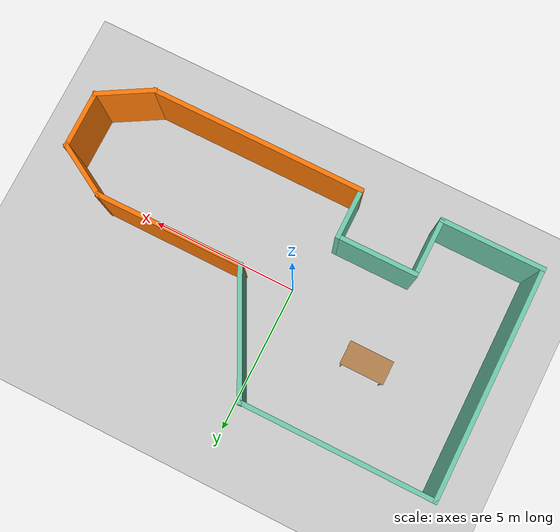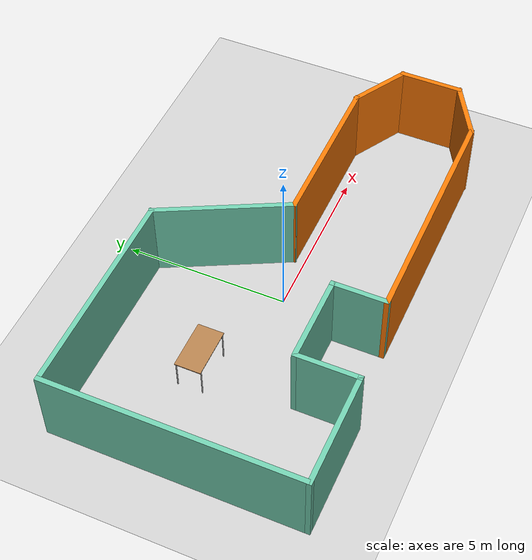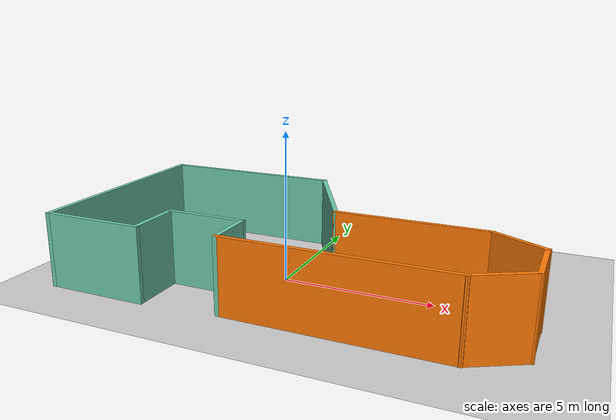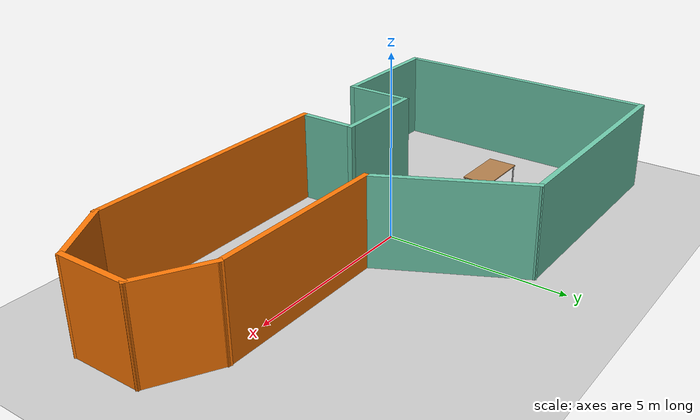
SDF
<sdf version="1.6">
 <world name="default">
  <light name="sun" type="directional">
   <pose>0 0 10 0 -0 0</pose>
   <diffuse>0.8 0.8 0.8 1</diffuse>
   <specular>0.2 0.2 0.2 1</specular>
   <attenuation>
    <range>1000</range>
    <constant>0.9</constant>
    <linear>0.01</linear>
    <quadratic>0.001</quadratic>
   </attenuation>
   <direction>-0.5 0.1 -0.9</direction>
  </light>
  <model name="ground_plane">
   <static>1</static>
   <link name="link">
    <collision name="collision">
     <geometry><plane><normal>0 0 1</normal><size>100 100</size></plane></geometry>
     <surface>
      <contact><collide_bitmask>65535</collide_bitmask></contact>
      <friction><ode><mu>100</mu><mu2>50</mu2></ode></friction>
     </surface>
    </collision>
    <visual name="visual">
     <cast_shadows>0</cast_shadows>
     <geometry><plane><normal>0 0 1</normal><size>100 100</size></plane></geometry>
     <material>
      <script><uri>file://media/materials/scripts/gazebo.material</uri><name>Gazebo/Grey</name></script>
     </material>
    </visual>
   </link>
  </model>
  <gravity>0 0 -9.8</gravity>
  <magnetic_field>6e-06 2.3e-05 -4.2e-05</magnetic_field>
  <atmosphere type="adiabatic"/>
  <physics name="default_physics" default="0" type="ode">
   <max_step_size>0.001</max_step_size>
   <real_time_factor>1</real_time_factor>
   <real_time_update_rate>1000</real_time_update_rate>
  </physics>
  <scene><ambient>0.4 0.4 0.4 1</ambient><background>0.7 0.7 0.7 1</background><shadows>1</shadows></scene>
  <audio><device>default</device></audio>
  <spherical_coordinates>
   <surface_model>EARTH_WGS84</surface_model>
   <latitude_deg>0</latitude_deg>
   <longitude_deg>0</longitude_deg>
   <elevation>0</elevation>
   <heading_deg>0</heading_deg>
  </spherical_coordinates>
  <model name="model.sdf">
   <pose>0.728785 0.211797 0 0 -0 0</pose>
   <link name="Wall_0">
    <collision name="Wall_0_Collision">
     <geometry><box><size>5 0.15 2.5</size></box></geometry>
     <pose>0 0 1.25 0 -0 0</pose>
    </collision>
    <visual name="Wall_0_Visual">
     <pose>0 0 1.25 0 -0 0</pose>
     <geometry><box><size>5 0.15 2.5</size></box></geometry>
     <material>
      <script><uri>file://media/materials/scripts/gazebo.material</uri><name>Gazebo/Grey</name></script>
      <ambient>0.996078 0.47451 0.0196078 1</ambient>
     </material>
     <meta><layer>0</layer></meta>
    </visual>
    <pose>3.2852 0.137098 0 0 -0 0</pose>
   </link>
   <link name="Wall_1">
    <collision name="Wall_1_Collision">
     <geometry><box><size>2 0.15 2.5</size></box></geometry>
     <pose>0 0 1.25 0 -0 0</pose>
    </collision>
    <visual name="Wall_1_Visual">
     <pose>0 0 1.25 0 -0 0</pose>
     <geometry><box><size>2 0.15 2.5</size></box></geometry>
     <material>
      <script><uri>file://media/materials/scripts/gazebo.material</uri><name>Gazebo/Grey</name></script>
      <ambient>0.996078 0.47451 0.0196078 1</ambient>
     </material>
     <meta><layer>0</layer></meta>
    </visual>
    <pose>6.51127 -0.325402 0 0 -0 -0.523599</pose>
   </link>
   <link name="Wall_10">
    <collision name="Wall_10_Collision">
     <geometry><box><size>6.5 0.15 2.5</size></box></geometry>
     <pose>0 0 1.25 0 -0 0</pose>
    </collision>
    <visual name="Wall_10_Visual">
     <pose>0 0 1.25 0 -0 0</pose>
     <geometry><box><size>6.5 0.15 2.5</size></box></geometry>
     <material>
      <script><uri>file://media/materials/scripts/gazebo.material</uri><name>Gazebo/Grey</name></script>
      <ambient>0.435294 0.796078 0.67451 1</ambient>
     </material>
     <meta><layer>0</layer></meta>
    </visual>
    <pose>-4.1648 3.7871 0 0 -0 0</pose>
   </link>
   <link name="Wall_11">
    <collision name="Wall_11_Collision">
     <geometry><box><size>4.24207 0.15 2.5</size></box></geometry>
     <pose>0 0 1.25 0 -0 0</pose>
    </collision>
    <visual name="Wall_11_Visual">
     <pose>0 0 1.25 0 -0 0</pose>
     <geometry><box><size>4.24207 0.15 2.5</size></box></geometry>
     <material>
      <script><uri>file://media/materials/scripts/gazebo.material</uri><name>Gazebo/Grey</name></script>
      <ambient>0.435294 0.796078 0.67451 1</ambient>
     </material>
     <meta><layer>0</layer></meta>
    </visual>
    <pose>-0.0648 1.9621 0 0 -0 -1.10168</pose>
   </link>
   <link name="Wall_2">
    <collision name="Wall_2_Collision">
     <geometry><box><size>2 0.15 2.5</size></box></geometry>
     <pose>0 0 1.25 0 -0 0</pose>
    </collision>
    <visual name="Wall_2_Visual">
     <pose>0 0 1.25 0 -0 0</pose>
     <geometry><box><size>2 0.15 2.5</size></box></geometry>
     <material>
      <script><uri>file://media/materials/scripts/gazebo.material</uri><name>Gazebo/Grey</name></script>
      <ambient>0.996078 0.47451 0.0196078 1</ambient>
     </material>
     <meta><layer>0</layer></meta>
    </visual>
    <pose>7.31235 -1.7129 0 0 -0 -1.5708</pose>
   </link>
   <link name="Wall_3">
    <collision name="Wall_3_Collision">
     <geometry><box><size>2 0.15 2.5</size></box></geometry>
     <pose>0 0 1.25 0 -0 0</pose>
    </collision>
    <visual name="Wall_3_Visual">
     <pose>0 0 1.25 0 -0 0</pose>
     <geometry><box><size>2 0.15 2.5</size></box></geometry>
     <material>
      <script><uri>file://media/materials/scripts/gazebo.material</uri><name>Gazebo/Grey</name></script>
      <ambient>0.996078 0.47451 0.0196078 1</ambient>
     </material>
     <meta><layer>0</layer></meta>
    </visual>
    <pose>6.51127 -3.1004 0 0 -0 -2.61799</pose>
   </link>
   <link name="Wall_4">
    <collision name="Wall_4_Collision">
     <geometry><box><size>7.25 0.15 2.5</size></box></geometry>
     <pose>0 0 1.25 0 -0 0</pose>
    </collision>
    <visual name="Wall_4_Visual">
     <pose>0 0 1.25 0 -0 0</pose>
     <geometry><box><size>7.25 0.15 2.5</size></box></geometry>
     <material>
      <script><uri>file://media/materials/scripts/gazebo.material</uri><name>Gazebo/Grey</name></script>
      <ambient>0.996078 0.47451 0.0196078 1</ambient>
     </material>
     <meta><layer>0</layer></meta>
    </visual>
    <pose>2.1602 -3.5629 0 0 -0 3.14159</pose>
   </link>
   <link name="Wall_5">
    <collision name="Wall_5_Collision">
     <geometry><box><size>1.75 0.15 2.5</size></box></geometry>
     <pose>0 0 1.25 0 -0 0</pose>
    </collision>
    <visual name="Wall_5_Visual">
     <pose>0 0 1.25 0 -0 0</pose>
     <geometry><box><size>1.75 0.15 2.5</size></box></geometry>
     <material>
      <script><uri>file://media/materials/scripts/gazebo.material</uri><name>Gazebo/Grey</name></script>
      <ambient>0.435294 0.796078 0.67451 1</ambient>
     </material>
     <meta><layer>0</layer></meta>
    </visual>
    <pose>-1.3898 -2.7629 0 0 -0 1.5708</pose>
   </link>
   <link name="Wall_6">
    <collision name="Wall_6_Collision">
     <geometry><box><size>2.75 0.15 2.5</size></box></geometry>
     <pose>0 0 1.25 0 -0 0</pose>
    </collision>
    <visual name="Wall_6_Visual">
     <pose>0 0 1.25 0 -0 0</pose>
     <geometry><box><size>2.75 0.15 2.5</size></box></geometry>
     <material>
      <script><uri>file://media/materials/scripts/gazebo.material</uri><name>Gazebo/Grey</name></script>
      <ambient>0.435294 0.796078 0.67451 1</ambient>
     </material>
     <meta><layer>0</layer></meta>
    </visual>
    <pose>-2.6898 -1.9629 0 0 -0 3.14159</pose>
   </link>
   <link name="Wall_7">
    <collision name="Wall_7_Collision">
     <geometry><box><size>2 0.15 2.5</size></box></geometry>
     <pose>0 0 1.25 0 -0 0</pose>
    </collision>
    <visual name="Wall_7_Visual">
     <pose>0 0 1.25 0 -0 0</pose>
     <geometry><box><size>2 0.15 2.5</size></box></geometry>
     <material>
      <script><uri>file://media/materials/scripts/gazebo.material</uri><name>Gazebo/Grey</name></script>
      <ambient>0.435294 0.796078 0.67451 1</ambient>
     </material>
     <meta><layer>0</layer></meta>
    </visual>
    <pose>-3.9898 -2.8879 0 0 -0 -1.5708</pose>
   </link>
   <link name="Wall_8">
    <collision name="Wall_8_Collision">
     <geometry><box><size>3.5 0.15 2.5</size></box></geometry>
     <pose>0 0 1.25 0 -0 0</pose>
    </collision>
    <visual name="Wall_8_Visual">
     <pose>0 0 1.25 0 -0 0</pose>
     <geometry><box><size>3.5 0.15 2.5</size></box></geometry>
     <material>
      <script><uri>file://media/materials/scripts/gazebo.material</uri><name>Gazebo/Grey</name></script>
      <ambient>0.435294 0.796078 0.67451 1</ambient>
     </material>
     <meta><layer>0</layer></meta>
    </visual>
    <pose>-5.6648 -3.8129 0 0 -0 3.14159</pose>
   </link>
   <link name="Wall_9">
    <collision name="Wall_9_Collision">
     <geometry><box><size>7.75 0.15 2.5</size></box></geometry>
     <pose>0 0 1.25 0 -0 0</pose>
    </collision>
    <visual name="Wall_9_Visual">
     <pose>0 0 1.25 0 -0 0</pose>
     <geometry><box><size>7.75 0.15 2.5</size></box></geometry>
     <material>
      <script><uri>file://media/materials/scripts/gazebo.material</uri><name>Gazebo/Grey</name></script>
      <ambient>0.435294 0.796078 0.67451 1</ambient>
     </material>
     <meta><layer>0</layer></meta>
    </visual>
    <pose>-7.3398 -0.012902 0 0 -0 1.5708</pose>
   </link>
   <static>1</static>
  </model>
  <model name="table">
   <static>1</static>
   <link name="link">
    <collision name="surface">
     <pose>0 0 1 0 -0 0</pose>
     <geometry><box><size>1.5 0.8 0.03</size></box></geometry>
     <surface><friction><ode><mu>0.6</mu><mu2>0.6</mu2></ode></friction></surface>
    </collision>
    <visual name="visual1">
     <pose>0 0 1 0 -0 0</pose>
     <geometry><box><size>1.5 0.8 0.03</size></box></geometry>
     <material>
      <script><uri>file://media/materials/scripts/gazebo.material</uri><name>Gazebo/Wood</name></script>
     </material>
    </visual>
    <collision name="front_left_leg">
     <pose>0.68 0.38 0.5 0 -0 0</pose>
     <geometry><cylinder><radius>0.02</radius><length>1</length></cylinder></geometry>
    </collision>
    <visual name="front_left_leg">
     <pose>0.68 0.38 0.5 0 -0 0</pose>
     <geometry><cylinder><radius>0.02</radius><length>1</length></cylinder></geometry>
     <material>
      <script><uri>file://media/materials/scripts/gazebo.material</uri><name>Gazebo/Grey</name></script>
     </material>
    </visual>
    <collision name="front_right_leg">
     <pose>0.68 -0.38 0.5 0 -0 0</pose>
     <geometry><cylinder><radius>0.02</radius><length>1</length></cylinder></geometry>
    </collision>
    <visual name="front_right_leg">
     <pose>0.68 -0.38 0.5 0 -0 0</pose>
     <geometry><cylinder><radius>0.02</radius><length>1</length></cylinder></geometry>
     <material>
      <script><uri>file://media/materials/scripts/gazebo.material</uri><name>Gazebo/Grey</name></script>
     </material>
    </visual>
    <collision name="back_right_leg">
     <pose>-0.68 -0.38 0.5 0 -0 0</pose>
     <geometry><cylinder><radius>0.02</radius><length>1</length></cylinder></geometry>
    </collision>
    <visual name="back_right_leg">
     <pose>-0.68 -0.38 0.5 0 -0 0</pose>
     <geometry><cylinder><radius>0.02</radius><length>1</length></cylinder></geometry>
     <material>
      <script><uri>file://media/materials/scripts/gazebo.material</uri><name>Gazebo/Grey</name></script>
     </material>
    </visual>
    <collision name="back_left_leg">
     <pose>-0.68 0.38 0.5 0 -0 0</pose>
     <geometry><cylinder><radius>0.02</radius><length>1</length></cylinder></geometry>
    </collision>
    <visual name="back_left_leg">
     <pose>-0.68 0.38 0.5 0 -0 0</pose>
     <geometry><cylinder><radius>0.02</radius><length>1</length></cylinder></geometry>
     <material>
      <script><uri>file://media/materials/scripts/gazebo.material</uri><name>Gazebo/Grey</name></script>
     </material>
    </visual>
   </link>
   <pose>-3.15296 1.14804 0 0 -0 0</pose>
  </model>
 </world>
</sdf>
